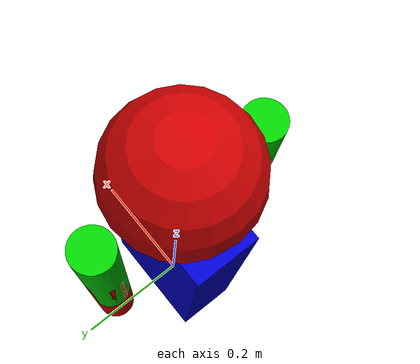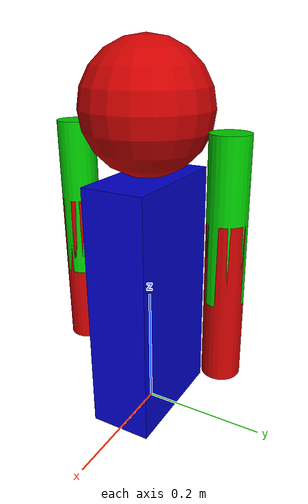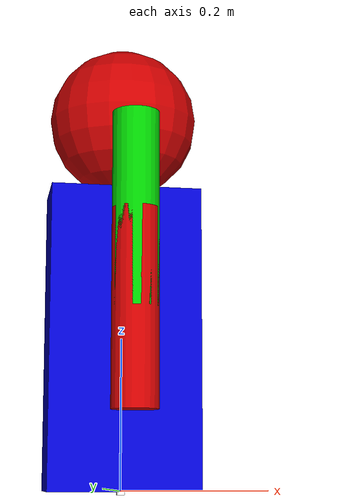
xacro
<?xml version="1.0"?>
<robot name="simple_humanoid" xmlns:xacro="http://ros.org/xacro">

  <!-- Define reusable properties -->
  <xacro:property name="PI" value="3.14159265359" />
  <xacro:property name="DEG_TO_RAD" value="${PI/180}" />

  <!-- Material colors -->
  <material name="blue">
    <color rgba="0 0 0.8 1"/>
  </material>
  <material name="red">
    <color rgba="0.8 0 0 1"/>
  </material>
  <material name="green">
    <color rgba="0 0.8 0 1"/>
  </material>
  <material name="white">
    <color rgba="1 1 1 1"/>
  </material>

  <!-- Define some link properties -->
  <xacro:property name="torso_width" value="0.2"/>
  <xacro:property name="torso_height" value="0.4"/>
  <xacro:property name="torso_depth" value="0.1"/>
  <xacro:property name="head_radius" value="0.1"/>
  <xacro:property name="arm_length" value="0.25"/>
  <xacro:property name="arm_radius" value="0.03"/>

  <!-- Base link (origin for the entire robot) -->
  <link name="base_link">
    <visual>
      <geometry>
        <box size="0.01 0.01 0.01"/>
      </geometry>
      <material name="white"/>
    </visual>
  </link>

  <!-- Torso Link -->
  <link name="torso_link">
    <visual>
      <geometry>
        <box size="${torso_width} ${torso_depth} ${torso_height}"/>
      </geometry>
      <material name="blue"/>
    </visual>
    <collision>
      <geometry>
        <box size="${torso_width} ${torso_depth} ${torso_height}"/>
      </geometry>
    </collision>
    <inertial>
      <mass value="10.0"/>
      <inertia ixx="1.0" ixy="0.0" ixz="0.0" iyy="1.0" iyz="0.0" izz="1.0"/>
    </inertial>
  </link>

  <!-- Base to Torso Joint (Fixed) -->
  <joint name="base_to_torso_joint" type="fixed">
    <parent link="base_link"/>
    <child link="torso_link"/>
    <origin xyz="0 0 ${torso_height/2}" rpy="0 0 0"/>
  </joint>

  <!-- Head Link -->
  <link name="head_link">
    <visual>
      <geometry>
        <sphere radius="${head_radius}"/>
      </geometry>
      <material name="red"/>
    </visual>
    <collision>
      <geometry>
        <sphere radius="${head_radius}"/>
      </geometry>
    </collision>
    <inertial>
      <mass value="1.0"/>
      <inertia ixx="0.1" ixy="0.0" ixz="0.0" iyy="0.1" iyz="0.0" izz="0.1"/>
    </inertial>
  </link>

  <!-- Torso to Head Joint (Revolute - Yaw) -->
  <joint name="torso_to_head_joint" type="revolute">
    <parent link="torso_link"/>
    <child link="head_link"/>
    <origin xyz="0 0 ${torso_height/2 + head_radius}" rpy="0 0 0"/>
    <axis xyz="0 0 1"/> <!-- Yaw around Z-axis -->
    <limit lower="-${PI/2}" upper="${PI/2}" effort="10" velocity="1"/>
  </joint>

  <!-- Right Upper Arm Link -->
  <link name="right_upper_arm_link">
    <visual>
      <geometry>
        <cylinder radius="${arm_radius}" length="${arm_length}"/>
      </geometry>
      <material name="green"/>
    </visual>
    <collision>
      <geometry>
        <cylinder radius="${arm_radius}" length="${arm_length}"/>
      </geometry>
    </collision>
    <inertial>
      <mass value="0.5"/>
      <inertia ixx="0.01" ixy="0.0" ixz="0.0" iyy="0.01" iyz="0.0" izz="0.01"/>
    </inertial>
  </link>

  <!-- Torso to Right Upper Arm Joint (Revolute - Roll) -->
  <joint name="torso_to_right_shoulder_joint" type="revolute">
    <parent link="torso_link"/>
    <child link="right_upper_arm_link"/>
    <origin xyz="0 ${-(torso_width/2 + arm_radius)} ${torso_height/2 - 0.05}" rpy="0 0 0"/>
    <axis xyz="1 0 0"/> <!-- Roll around X-axis -->
    <limit lower="-${PI/2}" upper="${PI/2}" effort="10" velocity="1"/>
  </joint>

  <!-- Right Lower Arm Link -->
  <link name="right_lower_arm_link">
    <visual>
      <geometry>
        <cylinder radius="${arm_radius}" length="${arm_length}"/>
      </geometry>
      <material name="red"/>
    </visual>
    <collision>
      <geometry>
        <cylinder radius="${arm_radius}" length="${arm_length}"/>
      </geometry>
    </collision>
    <inertial>
      <mass value="0.5"/>
      <inertia ixx="0.01" ixy="0.0" ixz="0.0" iyy="0.01" iyz="0.0" izz="0.01"/>
    </inertial>
  </link>

  <!-- Right Upper Arm to Right Lower Arm Joint (Revolute - Pitch) -->
  <joint name="right_elbow_joint" type="revolute">
    <parent link="right_upper_arm_link"/>
    <child link="right_lower_arm_link"/>
    <origin xyz="0 0 ${-arm_length/2}" rpy="0 0 0"/>
    <axis xyz="0 1 0"/> <!-- Pitch around Y-axis -->
    <limit lower="-${PI/2}" upper="${PI/2}" effort="10" velocity="1"/>
  </joint>

  <!-- Left Upper Arm Link (similar to right) -->
  <link name="left_upper_arm_link">
    <visual>
      <geometry>
        <cylinder radius="${arm_radius}" length="${arm_length}"/>
      </geometry>
      <material name="green"/>
    </visual>
    <collision>
      <geometry>
        <cylinder radius="${arm_radius}" length="${arm_length}"/>
      </geometry>
    </collision>
    <inertial>
      <mass value="0.5"/>
      <inertia ixx="0.01" ixy="0.0" ixz="0.0" iyy="0.01" iyz="0.0" izz="0.01"/>
    </inertial>
  </link>

  <!-- Torso to Left Upper Arm Joint (Revolute - Roll) -->
  <joint name="torso_to_left_shoulder_joint" type="revolute">
    <parent link="torso_link"/>
    <child link="left_upper_arm_link"/>
    <origin xyz="0 ${torso_width/2 + arm_radius} ${torso_height/2 - 0.05}" rpy="0 0 0"/>
    <axis xyz="1 0 0"/> <!-- Roll around X-axis -->
    <limit lower="-${PI/2}" upper="${PI/2}" effort="10" velocity="1"/>
  </joint>

  <!-- Left Lower Arm Link (similar to right) -->
  <link name="left_lower_arm_link">
    <visual>
      <geometry>
        <cylinder radius="${arm_radius}" length="${arm_length}"/>
      </geometry>
      <material name="red"/>
    </visual>
    <collision>
      <geometry>
        <cylinder radius="${arm_radius}" length="${arm_length}"/>
      </geometry>
    </collision>
    <inertial>
      <mass value="0.5"/>
      <inertia ixx="0.01" ixy="0.0" ixz="0.0" iyy="0.01" iyz="0.0" izz="0.01"/>
    </inertial>
  </link>

  <!-- Left Upper Arm to Left Lower Arm Joint (Revolute - Pitch) -->
  <joint name="left_elbow_joint" type="revolute">
    <parent link="left_upper_arm_link"/>
    <child link="left_lower_arm_link"/>
    <origin xyz="0 0 ${-arm_length/2}" rpy="0 0 0"/>
    <axis xyz="0 1 0"/> <!-- Pitch around Y-axis -->
    <limit lower="-${PI/2}" upper="${PI/2}" effort="10" velocity="1"/>
  </joint>

</robot>
